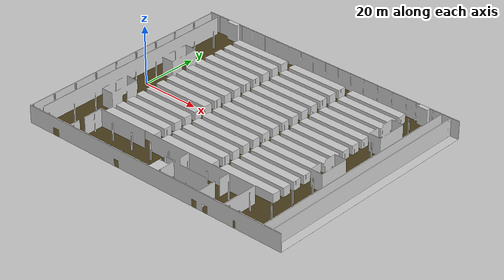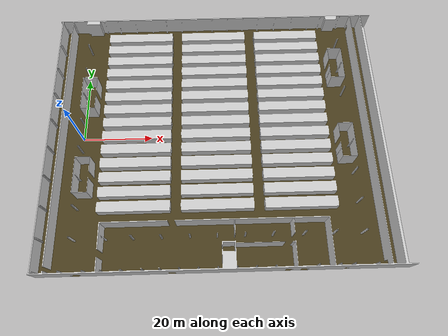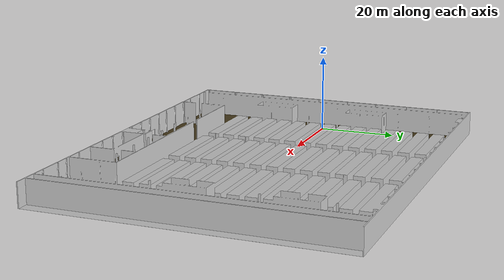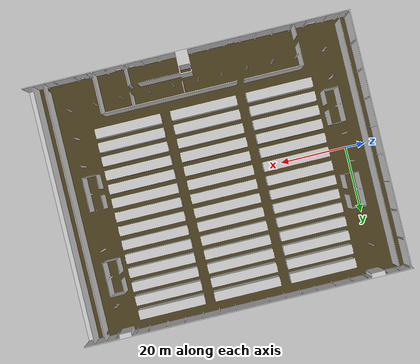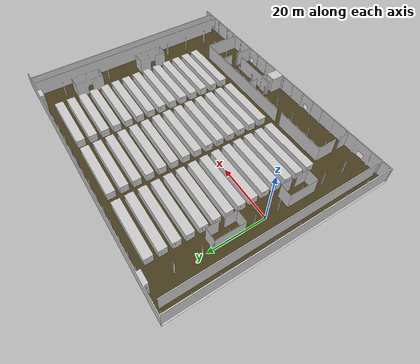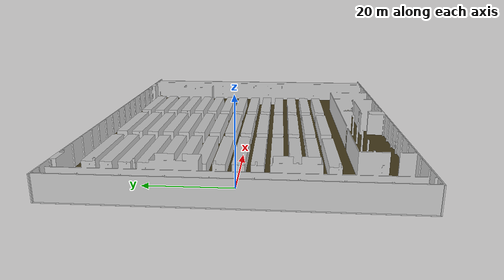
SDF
<?xml version="1.0" ?>
<sdf version="1.5">
  <model name="vector_dev_floor">
    <static>true</static>
    <link name="link">
      <inertial>
	      <pose>0 0 0 0 0 0</pose>
	      <inertia>
	      <ixx>2500.0</ixx>
	      <ixy>0</ixy>
	      <ixz>0</ixz>
	      <iyy>2500.0</iyy>
	      <iyz>0</iyz>
	      <izz>2500.0</izz>
	      </inertia>
	      <mass>10000000.0</mass>
      </inertial>

      <collision name="collision">
        <geometry>
          <mesh>
            <uri>model://google_floor/meshes/vector_dev_floor.dae</uri>
          </mesh>
        </geometry>
      </collision>

      <visual name="visual">
        <geometry>
          <mesh>
            <uri>model://google_floor/meshes/vector_dev_floor.dae</uri>
          </mesh>
        </geometry>
      </visual>
    </link>
  </model>
</sdf>
